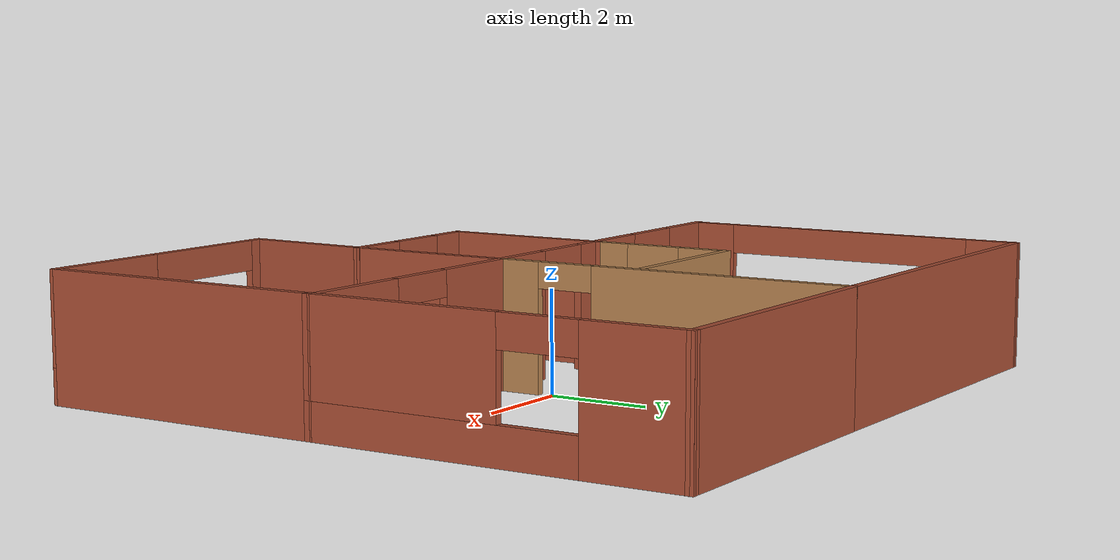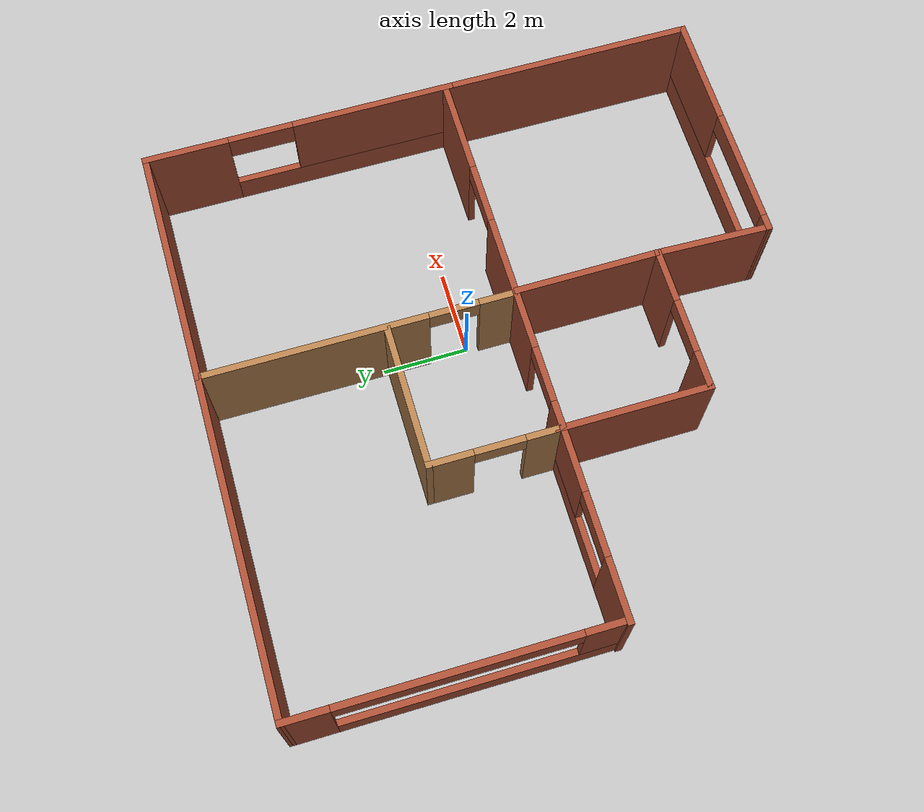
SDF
<?xml version='1.0'?>
<sdf version='1.7'>
  <model name='Robot_flats'>
    <pose>-1.01406 -0.485197 0 0 -0 0</pose>
    <link name='Wall_0'>
      <collision name='Wall_0_Collision'>
        <geometry>
          <box>
            <size>7.72006 0.15 2.5</size>
          </box>
        </geometry>
        <pose>0 0 1.25 0 -0 0</pose>
      </collision>
      <visual name='Wall_0_Visual'>
        <pose>0 0 1.25 0 -0 0</pose>
        <geometry>
          <box>
            <size>7.72006 0.15 2.5</size>
          </box>
        </geometry>
        <material>
          <script>
            <uri>file://media/materials/scripts/gazebo.material</uri>
            <name>Gazebo/Bricks</name>
          </script>
          <ambient>0.647059 0.113725 0.176471 1</ambient>
        </material>
        <meta>
          <layer>0</layer>
        </meta>
      </visual>
      <pose>-2.78094 6.5402 0 0 -0 -0.003963</pose>
    </link>
    <link name='Wall_1'>
      <collision name='Wall_1_Collision'>
        <geometry>
          <box>
            <size>5.75 0.15 2.5</size>
          </box>
        </geometry>
        <pose>0 0 1.25 0 -0 0</pose>
      </collision>
      <visual name='Wall_1_Visual'>
        <pose>0 0 1.25 0 -0 0</pose>
        <geometry>
          <box>
            <size>5.75 0.15 2.5</size>
          </box>
        </geometry>
        <material>
          <script>
            <uri>file://media/materials/scripts/gazebo.material</uri>
            <name>Gazebo/Bricks</name>
          </script>
          <ambient>0.647059 0.113725 0.176471 1</ambient>
        </material>
        <meta>
          <layer>0</layer>
        </meta>
      </visual>
      <pose>3.80406 6.5252 0 0 -0 0</pose>
    </link>
    <link name='Wall_10'>
      <pose>-0.054273 -0.632094 0 0 -0 0</pose>
      <visual name='Wall_10_Visual_0'>
        <pose>-5.8963 0 1.25 0 -0 0</pose>
        <geometry>
          <box>
            <size>1.4574 0.15 2.5</size>
          </box>
        </geometry>
        <material>
          <script>
            <uri>file://media/materials/scripts/gazebo.material</uri>
            <name>Gazebo/Bricks</name>
          </script>
          <ambient>0.647059 0.113725 0.176471 1</ambient>
        </material>
        <meta>
          <layer>0</layer>
        </meta>
      </visual>
      <collision name='Wall_10_Collision_0'>
        <geometry>
          <box>
            <size>1.4574 0.15 2.5</size>
          </box>
        </geometry>
        <pose>-5.8963 0 1.25 0 -0 0</pose>
      </collision>
      <visual name='Wall_10_Visual_1'>
        <pose>1.31178 0 1.25 0 -0 0</pose>
        <geometry>
          <box>
            <size>3.26263 0.15 2.5</size>
          </box>
        </geometry>
        <material>
          <script>
            <uri>file://media/materials/scripts/gazebo.material</uri>
            <name>Gazebo/Bricks</name>
          </script>
          <ambient>0.647059 0.113725 0.176471 1</ambient>
        </material>
        <meta>
          <layer>0</layer>
        </meta>
      </visual>
      <collision name='Wall_10_Collision_1'>
        <geometry>
          <box>
            <size>3.26263 0.15 2.5</size>
          </box>
        </geometry>
        <pose>1.31178 0 1.25 0 -0 0</pose>
      </collision>
      <visual name='Wall_10_Visual_2'>
        <pose>5.50515 0 1.25 0 -0 0</pose>
        <geometry>
          <box>
            <size>2.23971 0.15 2.5</size>
          </box>
        </geometry>
        <material>
          <script>
            <uri>file://media/materials/scripts/gazebo.material</uri>
            <name>Gazebo/Bricks</name>
          </script>
          <ambient>0.647059 0.113725 0.176471 1</ambient>
        </material>
        <meta>
          <layer>0</layer>
        </meta>
      </visual>
      <collision name='Wall_10_Collision_2'>
        <geometry>
          <box>
            <size>2.23971 0.15 2.5</size>
          </box>
        </geometry>
        <pose>5.50515 0 1.25 0 -0 0</pose>
      </collision>
      <visual name='Wall_10_Visual_3'>
        <pose>-3.3947 0 0.35 0 -0 0</pose>
        <geometry>
          <box>
            <size>3.5458 0.15 0.7</size>
          </box>
        </geometry>
        <material>
          <script>
            <uri>file://media/materials/scripts/gazebo.material</uri>
            <name>Gazebo/Bricks</name>
          </script>
          <ambient>0.647059 0.113725 0.176471 1</ambient>
        </material>
        <meta>
          <layer>0</layer>
        </meta>
      </visual>
      <collision name='Wall_10_Collision_3'>
        <geometry>
          <box>
            <size>3.5458 0.15 0.7</size>
          </box>
        </geometry>
        <pose>-3.3947 0 0.35 0 -0 0</pose>
      </collision>
      <visual name='Wall_10_Visual_4'>
        <pose>-2.6727 0 1.6 0 -0 0</pose>
        <geometry>
          <box>
            <size>2.1018 0.15 1.8</size>
          </box>
        </geometry>
        <material>
          <script>
            <uri>file://media/materials/scripts/gazebo.material</uri>
            <name>Gazebo/Bricks</name>
          </script>
          <ambient>0.647059 0.113725 0.176471 1</ambient>
        </material>
        <meta>
          <layer>0</layer>
        </meta>
      </visual>
      <collision name='Wall_10_Collision_4'>
        <geometry>
          <box>
            <size>2.1018 0.15 1.8</size>
          </box>
        </geometry>
        <pose>-2.6727 0 1.6 0 -0 0</pose>
      </collision>
      <visual name='Wall_10_Visual_5'>
        <pose>-4.4456 0 2.2 0 -0 0</pose>
        <geometry>
          <box>
            <size>1.444 0.15 0.6</size>
          </box>
        </geometry>
        <material>
          <script>
            <uri>file://media/materials/scripts/gazebo.material</uri>
            <name>Gazebo/Bricks</name>
          </script>
          <ambient>0.647059 0.113725 0.176471 1</ambient>
        </material>
        <meta>
          <layer>0</layer>
        </meta>
      </visual>
      <collision name='Wall_10_Collision_5'>
        <geometry>
          <box>
            <size>1.444 0.15 0.6</size>
          </box>
        </geometry>
        <pose>-4.4456 0 2.2 0 -0 0</pose>
      </collision>
      <visual name='Wall_10_Visual_6'>
        <pose>3.6642 0 2.25 0 -0 0</pose>
        <geometry>
          <box>
            <size>1.44219 0.15 0.5</size>
          </box>
        </geometry>
        <material>
          <script>
            <uri>file://media/materials/scripts/gazebo.material</uri>
            <name>Gazebo/Bricks</name>
          </script>
          <ambient>0.647059 0.113725 0.176471 1</ambient>
        </material>
        <meta>
          <layer>0</layer>
        </meta>
      </visual>
      <collision name='Wall_10_Collision_6'>
        <geometry>
          <box>
            <size>1.44219 0.15 0.5</size>
          </box>
        </geometry>
        <pose>3.6642 0 2.25 0 -0 0</pose>
      </collision>
      <visual name='Wall_10_Visual_7'>
        <pose>-0.97067 0 2.25 0 -0 0</pose>
        <geometry>
          <box>
            <size>1.30227 0.15 0.5</size>
          </box>
        </geometry>
        <material>
          <script>
            <uri>file://media/materials/scripts/gazebo.material</uri>
            <name>Gazebo/Bricks</name>
          </script>
          <ambient>0.647059 0.113725 0.176471 1</ambient>
        </material>
        <meta>
          <layer>0</layer>
        </meta>
      </visual>
      <collision name='Wall_10_Collision_7'>
        <geometry>
          <box>
            <size>1.30227 0.15 0.5</size>
          </box>
        </geometry>
        <pose>-0.97067 0 2.25 0 -0 0</pose>
      </collision>
    </link>
    <link name='Wall_12'>
      <pose>-6.56594 3.0052 0 0 -0 -1.5708</pose>
      <visual name='Wall_12_Visual_0'>
        <pose>-3.08282 0 1.25 0 -0 0</pose>
        <geometry>
          <box>
            <size>1.08436 0.15 2.5</size>
          </box>
        </geometry>
        <material>
          <script>
            <uri>file://media/materials/scripts/gazebo.material</uri>
            <name>Gazebo/Bricks</name>
          </script>
          <ambient>0.647059 0.113725 0.176471 1</ambient>
        </material>
        <meta>
          <layer>0</layer>
        </meta>
      </visual>
      <collision name='Wall_12_Collision_0'>
        <geometry>
          <box>
            <size>1.08436 0.15 2.5</size>
          </box>
        </geometry>
        <pose>-3.08282 0 1.25 0 -0 0</pose>
      </collision>
      <visual name='Wall_12_Visual_1'>
        <pose>0.542182 0 0.35 0 -0 0</pose>
        <geometry>
          <box>
            <size>6.16564 0.15 0.7</size>
          </box>
        </geometry>
        <material>
          <script>
            <uri>file://media/materials/scripts/gazebo.material</uri>
            <name>Gazebo/Bricks</name>
          </script>
          <ambient>0.647059 0.113725 0.176471 1</ambient>
        </material>
        <meta>
          <layer>0</layer>
        </meta>
      </visual>
      <collision name='Wall_12_Collision_1'>
        <geometry>
          <box>
            <size>6.16564 0.15 0.7</size>
          </box>
        </geometry>
        <pose>0.542182 0 0.35 0 -0 0</pose>
      </collision>
      <visual name='Wall_12_Visual_2'>
        <pose>3.16468 0 1.6 0 -0 0</pose>
        <geometry>
          <box>
            <size>0.920637 0.15 1.8</size>
          </box>
        </geometry>
        <material>
          <script>
            <uri>file://media/materials/scripts/gazebo.material</uri>
            <name>Gazebo/Bricks</name>
          </script>
          <ambient>0.647059 0.113725 0.176471 1</ambient>
        </material>
        <meta>
          <layer>0</layer>
        </meta>
      </visual>
      <collision name='Wall_12_Collision_2'>
        <geometry>
          <box>
            <size>0.920637 0.15 1.8</size>
          </box>
        </geometry>
        <pose>3.16468 0 1.6 0 -0 0</pose>
      </collision>
      <visual name='Wall_12_Visual_3'>
        <pose>0.081863 0 2.2 0 -0 0</pose>
        <geometry>
          <box>
            <size>5.245 0.15 0.6</size>
          </box>
        </geometry>
        <material>
          <script>
            <uri>file://media/materials/scripts/gazebo.material</uri>
            <name>Gazebo/Bricks</name>
          </script>
          <ambient>0.647059 0.113725 0.176471 1</ambient>
        </material>
        <meta>
          <layer>0</layer>
        </meta>
      </visual>
      <collision name='Wall_12_Collision_3'>
        <geometry>
          <box>
            <size>5.245 0.15 0.6</size>
          </box>
        </geometry>
        <pose>0.081863 0 2.2 0 -0 0</pose>
      </collision>
    </link>
    <link name='Wall_14'>
      <collision name='Wall_14_Collision'>
        <geometry>
          <box>
            <size>3.57893 0.15 2.5</size>
          </box>
        </geometry>
        <pose>0 0 1.25 0 -0 0</pose>
      </collision>
      <visual name='Wall_14_Visual'>
        <pose>0 0 1.25 0 -0 0</pose>
        <geometry>
          <box>
            <size>3.57893 0.15 2.5</size>
          </box>
        </geometry>
        <material>
          <script>
            <uri>file://media/materials/scripts/gazebo.material</uri>
            <name>Gazebo/Bricks</name>
          </script>
          <ambient>0.647059 0.113725 0.176471 1</ambient>
        </material>
        <meta>
          <layer>0</layer>
        </meta>
      </visual>
      <pose>-2.30172 -2.24074 0 0 -0 -1.5708</pose>
    </link>
    <link name='Wall_16'>
      <pose>-0.626717 -3.95521 0 0 -0 0</pose>
      <visual name='Wall_16_Visual_0'>
        <pose>-1.28599 0 1.25 0 -0 0</pose>
        <geometry>
          <box>
            <size>0.92801 0.15 2.5</size>
          </box>
        </geometry>
        <material>
          <script>
            <uri>file://media/materials/scripts/gazebo.material</uri>
            <name>Gazebo/Bricks</name>
          </script>
          <ambient>0.647059 0.113725 0.176471 1</ambient>
        </material>
        <meta>
          <layer>0</layer>
        </meta>
      </visual>
      <collision name='Wall_16_Collision_0'>
        <geometry>
          <box>
            <size>0.92801 0.15 2.5</size>
          </box>
        </geometry>
        <pose>-1.28599 0 1.25 0 -0 0</pose>
      </collision>
      <visual name='Wall_16_Visual_1'>
        <pose>1.09765 0 1.25 0 -0 0</pose>
        <geometry>
          <box>
            <size>1.3047 0.15 2.5</size>
          </box>
        </geometry>
        <material>
          <script>
            <uri>file://media/materials/scripts/gazebo.material</uri>
            <name>Gazebo/Bricks</name>
          </script>
          <ambient>0.647059 0.113725 0.176471 1</ambient>
        </material>
        <meta>
          <layer>0</layer>
        </meta>
      </visual>
      <collision name='Wall_16_Collision_1'>
        <geometry>
          <box>
            <size>1.3047 0.15 2.5</size>
          </box>
        </geometry>
        <pose>1.09765 0 1.25 0 -0 0</pose>
      </collision>
      <visual name='Wall_16_Visual_2'>
        <pose>-0.188345 0 2.25 0 -0 0</pose>
        <geometry>
          <box>
            <size>1.26729 0.15 0.5</size>
          </box>
        </geometry>
        <material>
          <script>
            <uri>file://media/materials/scripts/gazebo.material</uri>
            <name>Gazebo/Bricks</name>
          </script>
          <ambient>0.647059 0.113725 0.176471 1</ambient>
        </material>
        <meta>
          <layer>0</layer>
        </meta>
      </visual>
      <collision name='Wall_16_Collision_2'>
        <geometry>
          <box>
            <size>1.26729 0.15 0.5</size>
          </box>
        </geometry>
        <pose>-0.188345 0 2.25 0 -0 0</pose>
      </collision>
    </link>
    <link name='Wall_19'>
      <collision name='Wall_19_Collision'>
        <geometry>
          <box>
            <size>3.43824 0.15 2.5</size>
          </box>
        </geometry>
        <pose>0 0 1.25 0 -0 0</pose>
      </collision>
      <visual name='Wall_19_Visual'>
        <pose>0 0 1.25 0 -0 0</pose>
        <geometry>
          <box>
            <size>3.43824 0.15 2.5</size>
          </box>
        </geometry>
        <material>
          <script>
            <uri>file://media/materials/scripts/gazebo.material</uri>
            <name>Gazebo/Bricks</name>
          </script>
          <ambient>0.647059 0.113725 0.176471 1</ambient>
        </material>
        <meta>
          <layer>0</layer>
        </meta>
      </visual>
      <pose>1.04358 -2.31114 0 0 -0 1.57366</pose>
    </link>
    <link name='Wall_21'>
      <collision name='Wall_21_Collision'>
        <geometry>
          <box>
            <size>2.73399 0.15 2.5</size>
          </box>
        </geometry>
        <pose>0 0 1.25 0 -0 0</pose>
      </collision>
      <visual name='Wall_21_Visual'>
        <pose>0 0 1.25 0 -0 0</pose>
        <geometry>
          <box>
            <size>2.73399 0.15 2.5</size>
          </box>
        </geometry>
        <material>
          <script>
            <uri>file://media/materials/scripts/gazebo.material</uri>
            <name>Gazebo/Bricks</name>
          </script>
          <ambient>0.647059 0.113725 0.176471 1</ambient>
        </material>
        <meta>
          <layer>0</layer>
        </meta>
      </visual>
      <pose>1.00456 -5.24646 0 0 -0 -1.60465</pose>
    </link>
    <link name='Wall_22'>
      <pose>3.76083 -6.55521 0 0 -0 0</pose>
      <visual name='Wall_22_Visual_0'>
        <pose>-2.68042 0 1.25 0 -0 0</pose>
        <geometry>
          <box>
            <size>0.389161 0.15 2.5</size>
          </box>
        </geometry>
        <material>
          <script>
            <uri>file://media/materials/scripts/gazebo.material</uri>
            <name>Gazebo/Bricks</name>
          </script>
          <ambient>0.647059 0.113725 0.176471 1</ambient>
        </material>
        <meta>
          <layer>0</layer>
        </meta>
      </visual>
      <collision name='Wall_22_Collision_0'>
        <geometry>
          <box>
            <size>0.389161 0.15 2.5</size>
          </box>
        </geometry>
        <pose>-2.68042 0 1.25 0 -0 0</pose>
      </collision>
      <visual name='Wall_22_Visual_1'>
        <pose>0.194581 0 0.35 0 -0 0</pose>
        <geometry>
          <box>
            <size>5.36084 0.15 0.7</size>
          </box>
        </geometry>
        <material>
          <script>
            <uri>file://media/materials/scripts/gazebo.material</uri>
            <name>Gazebo/Bricks</name>
          </script>
          <ambient>0.647059 0.113725 0.176471 1</ambient>
        </material>
        <meta>
          <layer>0</layer>
        </meta>
      </visual>
      <collision name='Wall_22_Collision_1'>
        <geometry>
          <box>
            <size>5.36084 0.15 0.7</size>
          </box>
        </geometry>
        <pose>0.194581 0 0.35 0 -0 0</pose>
      </collision>
      <visual name='Wall_22_Visual_2'>
        <pose>1.56003 0 1.6 0 -0 0</pose>
        <geometry>
          <box>
            <size>2.62994 0.15 1.8</size>
          </box>
        </geometry>
        <material>
          <script>
            <uri>file://media/materials/scripts/gazebo.material</uri>
            <name>Gazebo/Bricks</name>
          </script>
          <ambient>0.647059 0.113725 0.176471 1</ambient>
        </material>
        <meta>
          <layer>0</layer>
        </meta>
      </visual>
      <collision name='Wall_22_Collision_2'>
        <geometry>
          <box>
            <size>2.62994 0.15 1.8</size>
          </box>
        </geometry>
        <pose>1.56003 0 1.6 0 -0 0</pose>
      </collision>
      <visual name='Wall_22_Visual_3'>
        <pose>-1.12039 0 2.2 0 -0 0</pose>
        <geometry>
          <box>
            <size>2.7309 0.15 0.6</size>
          </box>
        </geometry>
        <material>
          <script>
            <uri>file://media/materials/scripts/gazebo.material</uri>
            <name>Gazebo/Bricks</name>
          </script>
          <ambient>0.647059 0.113725 0.176471 1</ambient>
        </material>
        <meta>
          <layer>0</layer>
        </meta>
      </visual>
      <collision name='Wall_22_Collision_3'>
        <geometry>
          <box>
            <size>2.7309 0.15 0.6</size>
          </box>
        </geometry>
        <pose>-1.12039 0 2.2 0 -0 0</pose>
      </collision>
    </link>
    <link name='Wall_24'>
      <collision name='Wall_24_Collision'>
        <geometry>
          <box>
            <size>5.96821 0.15 2.5</size>
          </box>
        </geometry>
        <pose>0 0 1.25 0 -0 0</pose>
      </collision>
      <visual name='Wall_24_Visual'>
        <pose>0 0 1.25 0 -0 0</pose>
        <geometry>
          <box>
            <size>5.96821 0.15 2.5</size>
          </box>
        </geometry>
        <material>
          <script>
            <uri>file://media/materials/scripts/gazebo.material</uri>
            <name>Gazebo/Bricks</name>
          </script>
          <ambient>0.647059 0.113725 0.176471 1</ambient>
        </material>
        <meta>
          <layer>0</layer>
        </meta>
      </visual>
      <pose>6.57203 -3.64612 0 0 -0 1.56695</pose>
    </link>
    <link name='Wall_3'>
      <pose>1.00406 2.9752 0 0 -0 -1.5708</pose>
      <visual name='Wall_3_Visual_0'>
        <pose>-1.00779 0 1.25 0 -0 0</pose>
        <geometry>
          <box>
            <size>5.23442 0.15 2.5</size>
          </box>
        </geometry>
        <material>
          <script>
            <uri>file://media/materials/scripts/gazebo.material</uri>
            <name>Gazebo/Wood</name>
          </script>
          <ambient>0.388235 0.270588 0.172549 1</ambient>
        </material>
        <meta>
          <layer>0</layer>
        </meta>
      </visual>
      <collision name='Wall_3_Collision_0'>
        <geometry>
          <box>
            <size>5.23442 0.15 2.5</size>
          </box>
        </geometry>
        <pose>-1.00779 0 1.25 0 -0 0</pose>
      </collision>
      <visual name='Wall_3_Visual_1'>
        <pose>3.18964 0 1.25 0 -0 0</pose>
        <geometry>
          <box>
            <size>0.870718 0.15 2.5</size>
          </box>
        </geometry>
        <material>
          <script>
            <uri>file://media/materials/scripts/gazebo.material</uri>
            <name>Gazebo/Wood</name>
          </script>
          <ambient>0.388235 0.270588 0.172549 1</ambient>
        </material>
        <meta>
          <layer>0</layer>
        </meta>
      </visual>
      <collision name='Wall_3_Collision_1'>
        <geometry>
          <box>
            <size>0.870718 0.15 2.5</size>
          </box>
        </geometry>
        <pose>3.18964 0 1.25 0 -0 0</pose>
      </collision>
      <visual name='Wall_3_Visual_2'>
        <pose>2.18185 0 2.25 0 -0 0</pose>
        <geometry>
          <box>
            <size>1.14486 0.15 0.5</size>
          </box>
        </geometry>
        <material>
          <script>
            <uri>file://media/materials/scripts/gazebo.material</uri>
            <name>Gazebo/Wood</name>
          </script>
          <ambient>0.388235 0.270588 0.172549 1</ambient>
        </material>
        <meta>
          <layer>0</layer>
        </meta>
      </visual>
      <collision name='Wall_3_Collision_2'>
        <geometry>
          <box>
            <size>1.14486 0.15 0.5</size>
          </box>
        </geometry>
        <pose>2.18185 0 2.25 0 -0 0</pose>
      </collision>
    </link>
    <link name='Wall_5'>
      <collision name='Wall_5_Collision'>
        <geometry>
          <box>
            <size>3.38642 0.15 2.5</size>
          </box>
        </geometry>
        <pose>0 0 1.25 0 -0 0</pose>
      </collision>
      <visual name='Wall_5_Visual'>
        <pose>0 0 1.25 0 -0 0</pose>
        <geometry>
          <box>
            <size>3.38642 0.15 2.5</size>
          </box>
        </geometry>
        <material>
          <script>
            <uri>file://media/materials/scripts/gazebo.material</uri>
            <name>Gazebo/Wood</name>
          </script>
          <ambient>0.388235 0.270588 0.172549 1</ambient>
        </material>
        <meta>
          <layer>0</layer>
        </meta>
      </visual>
      <pose>-0.683887 2.32373 0 0 -0 3.14159</pose>
    </link>
    <link name='Wall_6'>
      <pose>-2.30172 0.898727 0 0 -0 -1.5708</pose>
      <visual name='Wall_6_Visual_0'>
        <pose>-0.966035 0 1.25 0 -0 0</pose>
        <geometry>
          <box>
            <size>1.06793 0.15 2.5</size>
          </box>
        </geometry>
        <material>
          <script>
            <uri>file://media/materials/scripts/gazebo.material</uri>
            <name>Gazebo/Wood</name>
          </script>
          <ambient>0.388235 0.270588 0.172549 1</ambient>
        </material>
        <meta>
          <layer>0</layer>
        </meta>
      </visual>
      <collision name='Wall_6_Collision_0'>
        <geometry>
          <box>
            <size>1.06793 0.15 2.5</size>
          </box>
        </geometry>
        <pose>-0.966035 0 1.25 0 -0 0</pose>
      </collision>
      <visual name='Wall_6_Visual_1'>
        <pose>1.1064 0 1.25 0 -0 0</pose>
        <geometry>
          <box>
            <size>0.787209 0.15 2.5</size>
          </box>
        </geometry>
        <material>
          <script>
            <uri>file://media/materials/scripts/gazebo.material</uri>
            <name>Gazebo/Wood</name>
          </script>
          <ambient>0.388235 0.270588 0.172549 1</ambient>
        </material>
        <meta>
          <layer>0</layer>
        </meta>
      </visual>
      <collision name='Wall_6_Collision_1'>
        <geometry>
          <box>
            <size>0.787209 0.15 2.5</size>
          </box>
        </geometry>
        <pose>1.1064 0 1.25 0 -0 0</pose>
      </collision>
      <visual name='Wall_6_Visual_2'>
        <pose>0.140361 0 2.25 0 -0 0</pose>
        <geometry>
          <box>
            <size>1.14486 0.15 0.5</size>
          </box>
        </geometry>
        <material>
          <script>
            <uri>file://media/materials/scripts/gazebo.material</uri>
            <name>Gazebo/Wood</name>
          </script>
          <ambient>0.388235 0.270588 0.172549 1</ambient>
        </material>
        <meta>
          <layer>0</layer>
        </meta>
      </visual>
      <collision name='Wall_6_Collision_2'>
        <geometry>
          <box>
            <size>1.14486 0.15 0.5</size>
          </box>
        </geometry>
        <pose>0.140361 0 2.25 0 -0 0</pose>
      </collision>
    </link>
    <link name='Wall_8'>
      <pose>6.59365 2.89408 0 0 -0 -1.57366</pose>
      <visual name='Wall_8_Visual_0'>
        <pose>-2.69638 0 1.25 0 -0 0</pose>
        <geometry>
          <box>
            <size>2.01958 0.15 2.5</size>
          </box>
        </geometry>
        <material>
          <script>
            <uri>file://media/materials/scripts/gazebo.material</uri>
            <name>Gazebo/Bricks</name>
          </script>
          <ambient>0.647059 0.113725 0.176471 1</ambient>
        </material>
        <meta>
          <layer>0</layer>
        </meta>
      </visual>
      <collision name='Wall_8_Collision_0'>
        <geometry>
          <box>
            <size>2.01958 0.15 2.5</size>
          </box>
        </geometry>
        <pose>-2.69638 0 1.25 0 -0 0</pose>
      </collision>
      <visual name='Wall_8_Visual_1'>
        <pose>1.00979 0 0.35 0 -0 0</pose>
        <geometry>
          <box>
            <size>5.39276 0.15 0.7</size>
          </box>
        </geometry>
        <material>
          <script>
            <uri>file://media/materials/scripts/gazebo.material</uri>
            <name>Gazebo/Bricks</name>
          </script>
          <ambient>0.647059 0.113725 0.176471 1</ambient>
        </material>
        <meta>
          <layer>0</layer>
        </meta>
      </visual>
      <collision name='Wall_8_Collision_1'>
        <geometry>
          <box>
            <size>5.39276 0.15 0.7</size>
          </box>
        </geometry>
        <pose>1.00979 0 0.35 0 -0 0</pose>
      </collision>
      <visual name='Wall_8_Visual_2'>
        <pose>1.77179 0 1.6 0 -0 0</pose>
        <geometry>
          <box>
            <size>3.86876 0.15 1.8</size>
          </box>
        </geometry>
        <material>
          <script>
            <uri>file://media/materials/scripts/gazebo.material</uri>
            <name>Gazebo/Bricks</name>
          </script>
          <ambient>0.647059 0.113725 0.176471 1</ambient>
        </material>
        <meta>
          <layer>0</layer>
        </meta>
      </visual>
      <collision name='Wall_8_Collision_2'>
        <geometry>
          <box>
            <size>3.86876 0.15 1.8</size>
          </box>
        </geometry>
        <pose>1.77179 0 1.6 0 -0 0</pose>
      </collision>
      <visual name='Wall_8_Visual_3'>
        <pose>-0.924589 0 2.2 0 -0 0</pose>
        <geometry>
          <box>
            <size>1.524 0.15 0.6</size>
          </box>
        </geometry>
        <material>
          <script>
            <uri>file://media/materials/scripts/gazebo.material</uri>
            <name>Gazebo/Bricks</name>
          </script>
          <ambient>0.647059 0.113725 0.176471 1</ambient>
        </material>
        <meta>
          <layer>0</layer>
        </meta>
      </visual>
      <collision name='Wall_8_Collision_3'>
        <geometry>
          <box>
            <size>1.524 0.15 0.6</size>
          </box>
        </geometry>
        <pose>-0.924589 0 2.2 0 -0 0</pose>
      </collision>
    </link>
    <static>1</static>
  </model>
</sdf>
